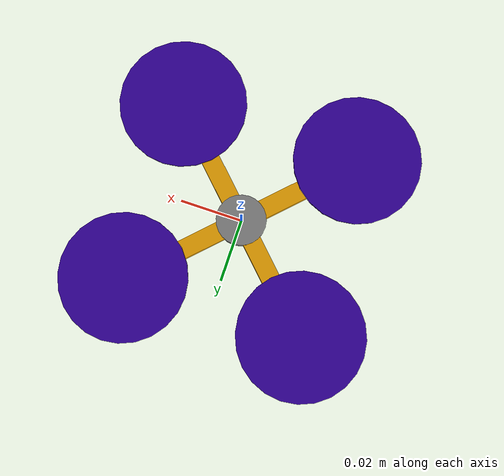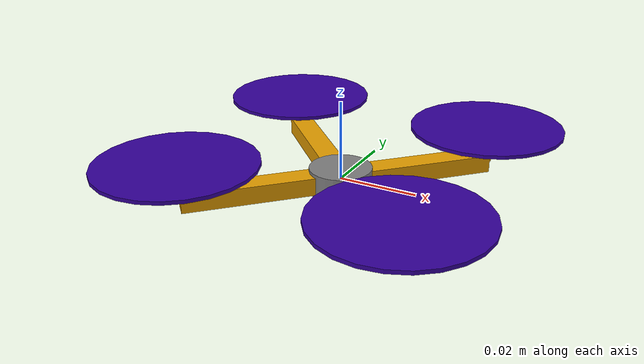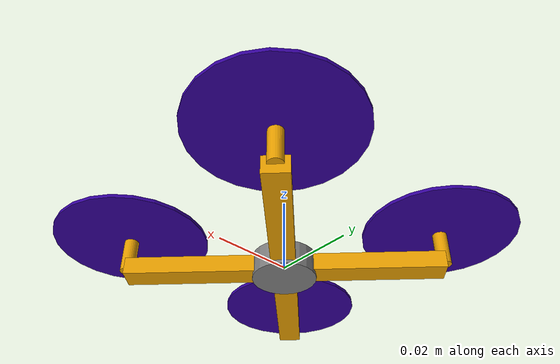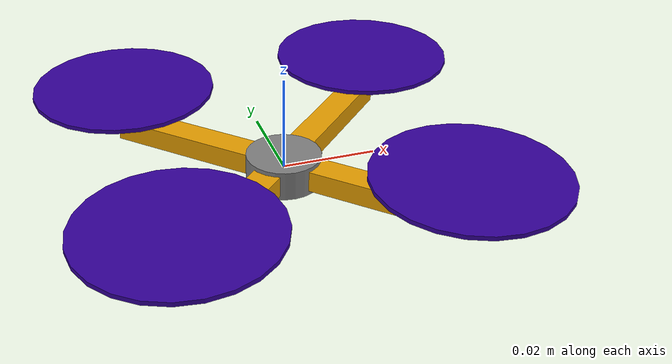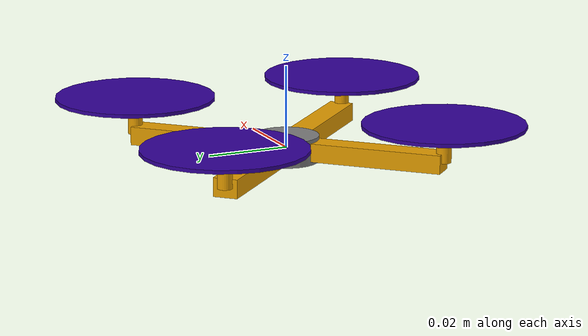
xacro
<?xml version="1.0" encoding="utf-8"?>
<robot xmlns:xacro="http://www.ros.org/wiki/xacro" name="neuroBEM">
    <xacro:include filename="$(find quadrotor_description)/description/generic.xacro" />
    <xacro:quadrotor_generic ARM_X='0.028' ARM_Y='0.028' ARM_Z='0.009' MASS='0.027' IXX='1.4e-5' IYY='1.4e-5' IZZ='2.17e-5' base_color='0.5 0.5 0.5 0.9' prop_color= '0.2 0.0 0.6 0.95'/>
</robot>

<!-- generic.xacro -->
<robot xmlns:xacro="http://www.ros.org/wiki/xacro">
    <xacro:macro name="quadrotor_generic"
        params="ARM_X:=0.1 ARM_Y:=0.1 ARM_Z:=0.03 MASS:=1.0 IXX:=0.0025 IYY:=0.0025 IZZ:=0.005 base_color:='0.5 0.5 0.5 1.0' prop_color:='0.8 0.0 0.0 0.8'">
        <link name="base_link">

            <inertial>
                <origin rpy="0 0 0" xyz="0 0 0" />
                <mass value="${MASS}" />
                <inertia ixx="${IXX}" ixy="0.0" ixz="0.0" iyy="${IYY}" iyz="0.0" izz="${IZZ}" />
            </inertial>

            <visual>
                <origin rpy="0 0 0" xyz="0 0 0" />
                <geometry>
                    <cylinder radius="${0.2*sqrt(ARM_X**2+ARM_Y**2)}" length="${0.7*ARM_Z}" />
                </geometry>
                <material name="base_mat">
                    <color rgba="${base_color}" />
                </material>
            </visual>

            <!-- Rotor 1 -->
            <visual>
                <origin xyz="${ARM_X/2} ${ARM_Y/2} 0" rpy="0 0 ${-atan(ARM_X/ARM_Y)}" />
                <geometry>
                    <box
                        size="${0.15* sqrt(ARM_X**2+ARM_Y**2)} ${sqrt(ARM_X**2+ARM_Y**2)} ${0.5*ARM_Z}" />
                </geometry>
            </visual>
            <visual>
                <origin xyz="${ARM_X} ${ARM_Y} ${ARM_Z/2}" rpy="0 0 0" />
                <geometry>
                    <cylinder radius="${0.2*ARM_Z}" length="${ARM_Z}" />
                </geometry>
            </visual>

            <!-- Rotor 2 -->
            <visual>
                <origin xyz="${-ARM_X/2} ${ARM_Y/2} 0" rpy="0 0 ${-atan(-ARM_X/ARM_Y)}" />
                <geometry>
                    <box
                        size="${0.15* sqrt(ARM_X**2+ARM_Y**2)} ${sqrt(ARM_X**2+ARM_Y**2)} ${0.5*ARM_Z}" />
                </geometry>
            </visual>
            <visual>
                <origin xyz="${-ARM_X} ${ARM_Y} ${ARM_Z/2}" rpy="0 0 0" />
                <geometry>
                    <cylinder radius="${0.2*ARM_Z}" length="${ARM_Z}" />
                </geometry>
            </visual>

            <!-- Rotor 3 -->
            <visual>
                <origin xyz="${-ARM_X/2} ${-ARM_Y/2} 0" rpy="0 0 ${-atan(ARM_X/ARM_Y)}" />
                <geometry>
                    <box
                        size="${0.15* sqrt(ARM_X**2+ARM_Y**2)} ${sqrt(ARM_X**2+ARM_Y**2)} ${0.5*ARM_Z}" />
                </geometry>
            </visual>
            <visual>
                <origin xyz="${-ARM_X} ${-ARM_Y} ${ARM_Z/2}" rpy="0 0 0" />
                <geometry>
                    <cylinder radius="${0.2*ARM_Z}" length="${ARM_Z}" />
                </geometry>
            </visual>

            <!-- Rotor 4 -->
            <visual>
                <origin xyz="${ARM_X/2} ${-ARM_Y/2} 0" rpy="0 0 ${-atan(-ARM_X/ARM_Y)}" />
                <geometry>
                    <box
                        size="${0.15* sqrt(ARM_X**2+ARM_Y**2)} ${sqrt(ARM_X**2+ARM_Y**2)} ${0.5*ARM_Z}" />
                </geometry>
            </visual>
            <visual>
                <origin xyz="${ARM_X} ${-ARM_Y} ${ARM_Z/2}" rpy="0 0 0" />
                <geometry>
                    <cylinder radius="${0.2*ARM_Z}" length="${ARM_Z}" />
                </geometry>
            </visual>

            <collision>
                <origin rpy="0 0 ${ARM_Z/2}" xyz="0 0 0" />
                <geometry>
                    <cylinder radius="${sqrt(ARM_X**2+ARM_Y**2)}" length="${ARM_Z}" />
                </geometry>
            </collision>

        </link>

        <link name="prop0_link">
            <inertial>
                <origin rpy="0 0 0" xyz="${ARM_X} -${ARM_Y} ${ARM_Z}" />
                <mass value="0" />
                <inertia ixx="0" ixy="0" ixz="0" iyy="0" iyz="0" izz="0" />
            </inertial>
            <visual>
                <origin xyz="${ARM_X} -${ARM_Y} ${ARM_Z}" rpy="0.0 0.0 0.0" />
                <geometry>
                    <cylinder radius="${0.7*ARM_X}" length="${0.1*ARM_Z}" />
                </geometry>
                <material name='prop_mat'>
                    <color rgba="${prop_color}" />
                </material>
            </visual>
        </link>
        <joint name="prop0_joint" type="fixed">
            <parent link="base_link" />
            <child link="prop0_link" />
        </joint>

        <link name="prop1_link">
            <inertial>
                <origin rpy="0 0 0" xyz="${ARM_X} ${ARM_Y} ${ARM_Z}" />
                <mass value="0" />
                <inertia ixx="0" ixy="0" ixz="0" iyy="0" iyz="0" izz="0" />
            </inertial>
            <visual>
                <origin xyz="${ARM_X} ${ARM_Y} ${ARM_Z}" rpy="0.0 0.0 0.0" />
                <geometry>
                    <cylinder radius="${0.7*ARM_X}" length="${0.1*ARM_Z}" />
                </geometry>
                <material name='prop_mat'>
                    <color rgba="${prop_color}" />
                </material>
            </visual>
        </link>
        <joint name="prop1_joint" type="fixed">
            <parent link="base_link" />
            <child link="prop1_link" />
        </joint>

        <link name="prop2_link">
            <inertial>
                <origin rpy="0 0 0" xyz="-${ARM_X} ${ARM_Y} ${ARM_Z}" />
                <mass value="0" />
                <inertia ixx="0" ixy="0" ixz="0" iyy="0" iyz="0" izz="0" />
            </inertial>
            <visual>
                <origin xyz="-${ARM_X} ${ARM_Y} ${ARM_Z}" rpy="0.0 0.0 0.0" />
                <geometry>
                    <cylinder radius="${0.7*ARM_X}" length="${0.1*ARM_Z}" />
                </geometry>
                <material name='prop_mat'>
                    <color rgba="${prop_color}" />
                </material>
            </visual>
        </link>
        <joint name="prop2_joint" type="fixed">
            <parent link="base_link" />
            <child link="prop2_link" />
        </joint>

        <link name="prop3_link">
            <inertial>
                <origin rpy="0 0 0" xyz="-${ARM_X} -${ARM_Y} ${ARM_Z}" />
                <mass value="0" />
                <inertia ixx="0" ixy="0" ixz="0" iyy="0" iyz="0" izz="0" />
            </inertial>
            <visual>
                <origin xyz="-${ARM_X} -${ARM_Y} ${ARM_Z}" rpy="0.0 0.0 0.0" />
                <geometry>
                    <cylinder radius="${0.7*ARM_X}" length="${0.1*ARM_Z}" />
                </geometry>
                <material name='prop_mat'>
                    <color rgba="${prop_color}" />
                </material>
            </visual>
        </link>

        <joint name="prop3_joint" type="fixed">
            <parent link="base_link" />
            <child link="prop3_link" />
        </joint>
    </xacro:macro>
</robot>
